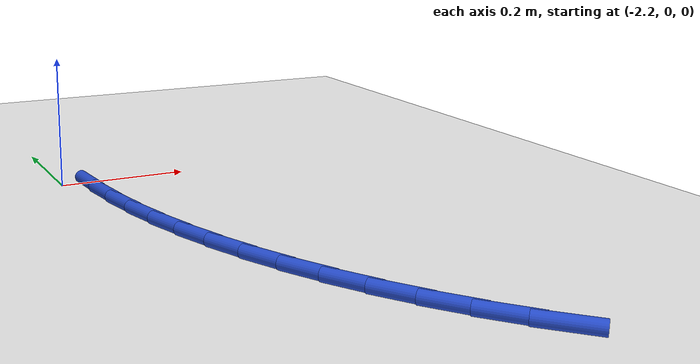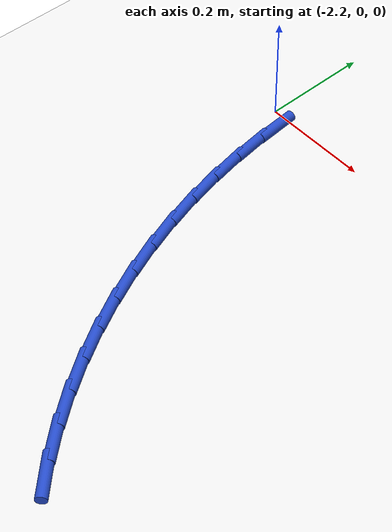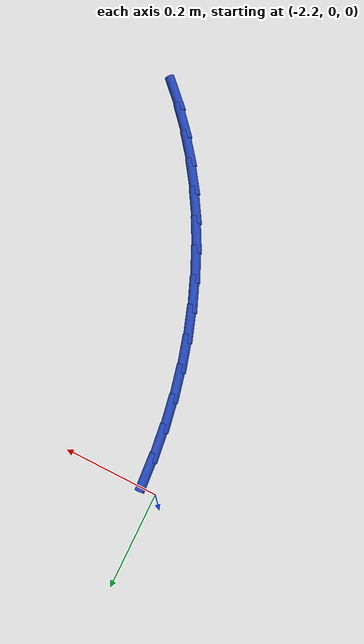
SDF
<sdf version="1.6">
 <world name="default">
  <model name="ground_plane">
   <static>1</static>
   <link name="link">
    <collision name="collision">
     <geometry><plane><normal>0 0 1</normal><size>100 100</size></plane></geometry>
     <surface><friction><ode><mu>100</mu><mu2>50</mu2></ode></friction></surface>
    </collision>
    <visual name="visual">
     <cast_shadows>0</cast_shadows>
     <geometry><plane><normal>0 0 1</normal><size>100 100</size></plane></geometry>
     <material>
      <script><uri>file://media/materials/scripts/gazebo.material</uri><name>Gazebo/WhiteGlow</name></script>
     </material>
    </visual>
   </link>
  </model>
  <model name="line">
   <link name="link_56">
    <pose>-2.1644116731483733 -0.0327227025411102 0.01 0 1.57 -1.491900131975554</pose>
    <collision name="collision">
     <geometry><cylinder><radius>0.01</radius><length>0.08</length></cylinder></geometry>
    </collision>
    <visual name="visual">
     <material>
      <script><name>Gazebo/Blue</name><uri>file://media/materials/scripts/gazebo.material</uri></script>
     </material>
     <geometry><cylinder><radius>0.01</radius><length>0.08</length></cylinder></geometry>
    </visual>
   </link>
   <link name="link_57">
    <pose>-2.1594873543933604 -0.0950083071041717 0.01 0 1.57 -1.4415331179696638</pose>
    <collision name="collision">
     <geometry><cylinder><radius>0.01</radius><length>0.08</length></cylinder></geometry>
    </collision>
    <visual name="visual">
     <material>
      <script><name>Gazebo/Blue</name><uri>file://media/materials/scripts/gazebo.material</uri></script>
     </material>
     <geometry><cylinder><radius>0.01</radius><length>0.08</length></cylinder></geometry>
    </visual>
   </link>
   <link name="link_58">
    <pose>-2.151448809716339 -0.15684897193173525 0.01 0 1.57 -1.391154837217517</pose>
    <collision name="collision">
     <geometry><cylinder><radius>0.01</radius><length>0.08</length></cylinder></geometry>
    </collision>
    <visual name="visual">
     <material>
      <script><name>Gazebo/Blue</name><uri>file://media/materials/scripts/gazebo.material</uri></script>
     </material>
     <geometry><cylinder><radius>0.01</radius><length>0.08</length></cylinder></geometry>
    </visual>
   </link>
   <link name="link_59">
    <pose>-2.140325632898289 -0.2181002250616566 0.01 0 1.57 -1.3406635699958078</pose>
    <collision name="collision">
     <geometry><cylinder><radius>0.01</radius><length>0.08</length></cylinder></geometry>
    </collision>
    <visual name="visual">
     <material>
      <script><name>Gazebo/Blue</name><uri>file://media/materials/scripts/gazebo.material</uri></script>
     </material>
     <geometry><cylinder><radius>0.01</radius><length>0.08</length></cylinder></geometry>
    </visual>
   </link>
   <link name="link_60">
    <pose>-2.126147417720188 -0.278617594531788 0.01 0 1.57 -1.2899570840970565</pose>
    <collision name="collision">
     <geometry><cylinder><radius>0.01</radius><length>0.08</length></cylinder></geometry>
    </collision>
    <visual name="visual">
     <material>
      <script><name>Gazebo/Blue</name><uri>file://media/materials/scripts/gazebo.material</uri></script>
     </material>
     <geometry><cylinder><radius>0.01</radius><length>0.08</length></cylinder></geometry>
    </visual>
   </link>
   <link name="link_61">
    <pose>-2.108943757963016 -0.3382566083799854 0.01 0 1.57 -1.2389345897066026</pose>
    <collision name="collision">
     <geometry><cylinder><radius>0.01</radius><length>0.08</length></cylinder></geometry>
    </collision>
    <visual name="visual">
     <material>
      <script><name>Gazebo/Blue</name><uri>file://media/materials/scripts/gazebo.material</uri></script>
     </material>
     <geometry><cylinder><radius>0.01</radius><length>0.08</length></cylinder></geometry>
    </visual>
   </link>
   <link name="link_62">
    <pose>-2.0887442474077513 -0.396872794644101 0.01 0 1.57 -1.187498795356236</pose>
    <collision name="collision">
     <geometry><cylinder><radius>0.01</radius><length>0.08</length></cylinder></geometry>
    </collision>
    <visual name="visual">
     <material>
      <script><name>Gazebo/Blue</name><uri>file://media/materials/scripts/gazebo.material</uri></script>
     </material>
     <geometry><cylinder><radius>0.01</radius><length>0.08</length></cylinder></geometry>
    </visual>
   </link>
   <link name="link_63">
    <pose>-2.0655784798353727 -0.45432168136199047 0.01 0 1.57 -1.135537334093399</pose>
    <collision name="collision">
     <geometry><cylinder><radius>0.01</radius><length>0.08</length></cylinder></geometry>
    </collision>
    <visual name="visual">
     <material>
      <script><name>Gazebo/Blue</name><uri>file://media/materials/scripts/gazebo.material</uri></script>
     </material>
     <geometry><cylinder><radius>0.01</radius><length>0.08</length></cylinder></geometry>
    </visual>
   </link>
   <link name="link_64">
    <pose>-2.0394758535265374 -0.5104561678140666 0.01 0 1.57 -1.082641678035513</pose>
    <collision name="collision">
     <geometry><cylinder><radius>0.01</radius><length>0.08</length></cylinder></geometry>
    </collision>
    <visual name="visual">
     <material>
      <script><name>Gazebo/Blue</name><uri>file://media/materials/scripts/gazebo.material</uri></script>
     </material>
     <geometry><cylinder><radius>0.01</radius><length>0.08</length></cylinder></geometry>
    </visual>
   </link>
   <link name="link_65">
    <pose>-2.0104630189005532 -0.5650922046923698 0.01 0 1.57 -1.0283972352000477</pose>
    <collision name="collision">
     <geometry><cylinder><radius>0.01</radius><length>0.08</length></cylinder></geometry>
    </collision>
    <visual name="visual">
     <material>
      <script><name>Gazebo/Blue</name><uri>file://media/materials/scripts/gazebo.material</uri></script>
     </material>
     <geometry><cylinder><radius>0.01</radius><length>0.08</length></cylinder></geometry>
    </visual>
   </link>
   <link name="link_66">
    <pose>-1.9785645982801443 -0.6180184722788481 0.01 0 1.57 -0.9725968609546696</pose>
    <collision name="collision">
     <geometry><cylinder><radius>0.01</radius><length>0.08</length></cylinder></geometry>
    </collision>
    <visual name="visual">
     <material>
      <script><name>Gazebo/Blue</name><uri>file://media/materials/scripts/gazebo.material</uri></script>
     </material>
     <geometry><cylinder><radius>0.01</radius><length>0.08</length></cylinder></geometry>
    </visual>
   </link>
   <link name="link_67">
    <pose>-1.94380516661639 -0.6690230138816962 0.01 0 1.57 -0.9150634294118447</pose>
    <collision name="collision">
     <geometry><cylinder><radius>0.01</radius><length>0.08</length></cylinder></geometry>
    </collision>
    <visual name="visual">
     <material>
      <script><name>Gazebo/Blue</name><uri>file://media/materials/scripts/gazebo.material</uri></script>
     </material>
     <geometry><cylinder><radius>0.01</radius><length>0.08</length></cylinder></geometry>
    </visual>
   </link>
   <link name="link_68">
    <pose>-1.9062092988603654 -0.7178938728091101 0.01 0 1.57 -0.8556525697644319</pose>
    <collision name="collision">
     <geometry><cylinder><radius>0.01</radius><length>0.08</length></cylinder></geometry>
    </collision>
    <visual name="visual">
     <material>
      <script><name>Gazebo/Blue</name><uri>file://media/materials/scripts/gazebo.material</uri></script>
     </material>
     <geometry><cylinder><radius>0.01</radius><length>0.08</length></cylinder></geometry>
    </visual>
   </link>
   <link name="link_69">
    <pose>-1.8658015699631485 -0.7644190923692842 0.01 0 1.57 -0.7942619173243893</pose>
    <collision name="collision">
     <geometry><cylinder><radius>0.01</radius><length>0.08</length></cylinder></geometry>
    </collision>
    <visual name="visual">
     <material>
      <script><name>Gazebo/Blue</name><uri>file://media/materials/scripts/gazebo.material</uri></script>
     </material>
     <geometry><cylinder><radius>0.01</radius><length>0.08</length></cylinder></geometry>
    </visual>
   </link>
  </model>
 </world>
</sdf>
